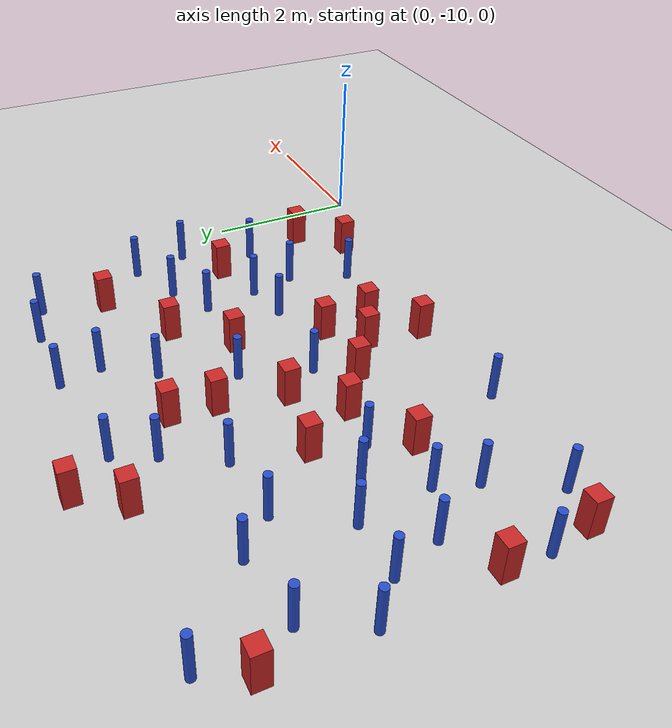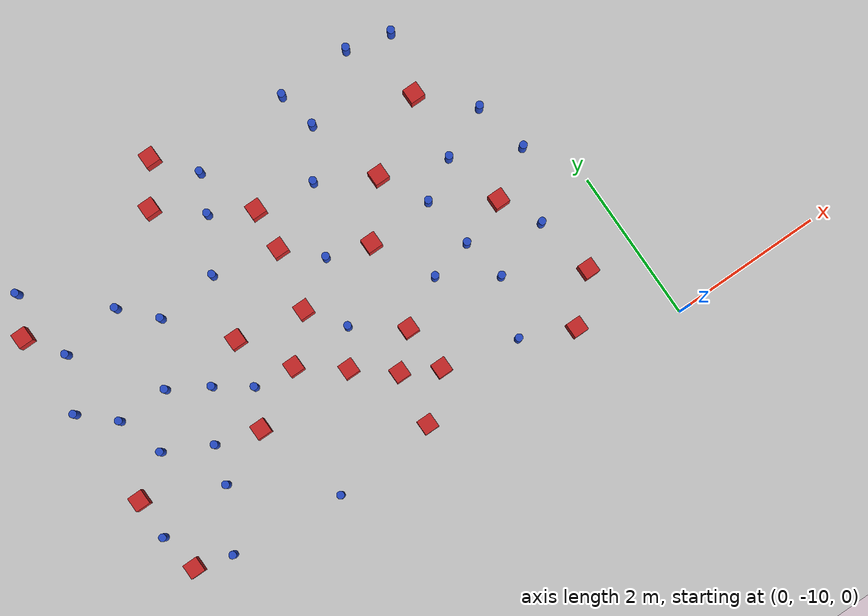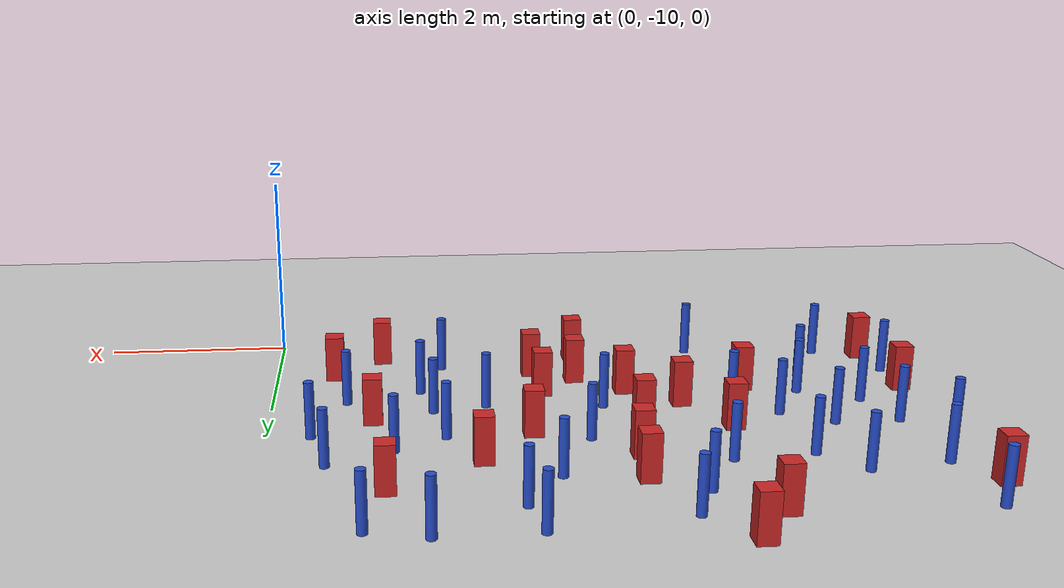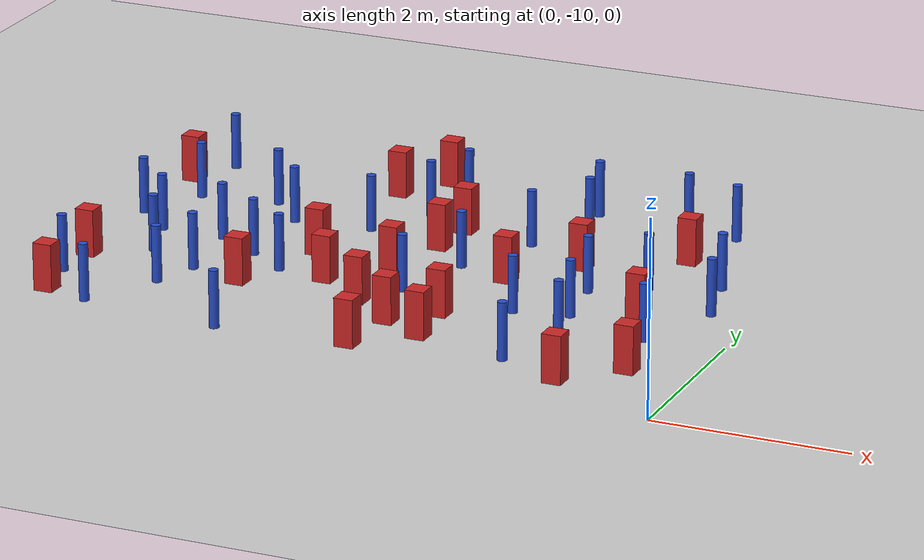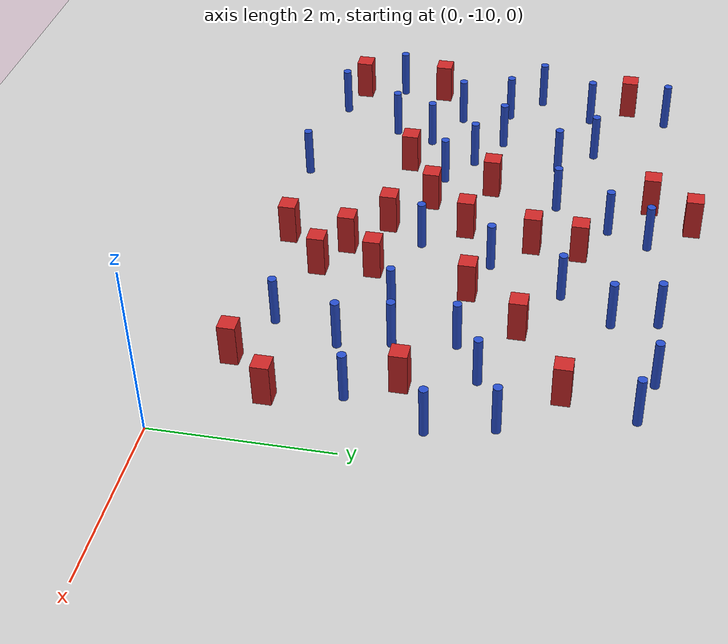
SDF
<sdf version="1.6">
 <world name="default">
  <model name="ground_plane">
   <static>1</static>
   <link name="link">
    <collision name="collision">
     <geometry><plane><normal>0 0 1</normal><size>100 100</size></plane></geometry>
     <surface><friction><ode><mu>100</mu><mu2>50</mu2></ode></friction></surface>
    </collision>
    <visual name="visual">
     <cast_shadows>0</cast_shadows>
     <geometry><plane><normal>0 0 1</normal><size>100 100</size></plane></geometry>
     <material>
      <ambient>1.0 1.0 1.0 1.0</ambient>
      <diffuse>0.8 0.8 0.8 1.0</diffuse>
      <specular>0.01 0.01 0.01 1.000000</specular>
     </material>
    </visual>
   </link>
  </model>
  <model name="pole_obstacle5">
   <static>true</static>
   <pose>-2.82751781046 -6.0906167842 -3.09024884793e-07 -7.19054271912e-07 -2.11315075134e-07 -1.93935509266e-07</pose>
   <link name="link">
    <pose>0 0 0.3 0 -0 0</pose>
    <inertial>
     <mass>1</mass>
     <inertia><ixx>0.145833</ixx><ixy>0</ixy><ixz>0</ixz><iyy>0.145833</iyy><iyz>0</iyz><izz>0.125</izz></inertia>
    </inertial>
    <collision name="collision">
     <geometry><cylinder><radius>0.05</radius><length>.6</length></cylinder></geometry>
    </collision>
    <visual name="visual">
     <geometry><cylinder><radius>0.05</radius><length>.6</length></cylinder></geometry>
     <material>
      <script><name>Gazebo/Blue</name><uri>file://media/materials/scripts/gazebo.material</uri></script>
     </material>
    </visual>
   </link>
  </model>
  <model name="pole_obstacle10">
   <static>true</static>
   <pose>-0.792953530495 -8.11880526269 -3.09024884793e-07 -7.19054271911e-07 -2.11315075158e-07 -1.93935509277e-07</pose>
   <link name="link">
    <pose>0 0 0.3 0 -0 0</pose>
    <inertial>
     <mass>1</mass>
     <inertia><ixx>0.145833</ixx><ixy>0</ixy><ixz>0</ixz><iyy>0.145833</iyy><iyz>0</iyz><izz>0.125</izz></inertia>
    </inertial>
    <collision name="collision">
     <geometry><cylinder><radius>0.05</radius><length>.6</length></cylinder></geometry>
    </collision>
    <visual name="visual">
     <geometry><cylinder><radius>0.05</radius><length>.6</length></cylinder></geometry>
     <material>
      <script><name>Gazebo/Blue</name><uri>file://media/materials/scripts/gazebo.material</uri></script>
     </material>
    </visual>
   </link>
  </model>
  <model name="square_post_obstacle11">
   <static>true</static>
   <pose>-6.83514758745 -8.10717139211 -4.36207812815e-07 3.75137919937e-06 9.77721102514e-07 2.47381364184e-05</pose>
   <link name="link">
    <pose>0 0 0.25 0 -0 0</pose>
    <inertial>
     <mass>100</mass>
     <inertia>
      <ixx>0.166667</ixx>
      <ixy>0</ixy>
      <ixz>0</ixz>
      <iyy>0.166667</iyy>
      <iyz>0</iyz>
      <izz>0.166667</izz>
     </inertia>
    </inertial>
    <collision name="collision"><geometry><box><size>.2 .2 .5</size></box></geometry></collision>
    <visual name="visual">
     <geometry><box><size>.2 .2 .5</size></box></geometry>
     <material>
      <script><name>Gazebo/Red</name><uri>file://media/materials/scripts/gazebo.material</uri></script>
     </material>
    </visual>
   </link>
  </model>
  <model name="pole_obstacle14">
   <static>true</static>
   <pose>-6.27800662612 -7.76188763991 -3.09024884793e-07 -7.19054271911e-07 -2.1131507516e-07 -1.93935509277e-07</pose>
   <link name="link">
    <pose>0 0 0.3 0 -0 0</pose>
    <inertial>
     <mass>1</mass>
     <inertia><ixx>0.145833</ixx><ixy>0</ixy><ixz>0</ixz><iyy>0.145833</iyy><iyz>0</iyz><izz>0.125</izz></inertia>
    </inertial>
    <collision name="collision">
     <geometry><cylinder><radius>0.05</radius><length>.6</length></cylinder></geometry>
    </collision>
    <visual name="visual">
     <geometry><cylinder><radius>0.05</radius><length>.6</length></cylinder></geometry>
     <material>
      <script><name>Gazebo/Blue</name><uri>file://media/materials/scripts/gazebo.material</uri></script>
     </material>
    </visual>
   </link>
  </model>
  <model name="pole_obstacle17">
   <static>true</static>
   <pose>-0.606134589963 -6.50112947915 -3.09024884793e-07 -7.19054271912e-07 -2.11315075129e-07 -1.93935509261e-07</pose>
   <link name="link">
    <pose>0 0 0.3 0 -0 0</pose>
    <inertial>
     <mass>1</mass>
     <inertia><ixx>0.145833</ixx><ixy>0</ixy><ixz>0</ixz><iyy>0.145833</iyy><iyz>0</iyz><izz>0.125</izz></inertia>
    </inertial>
    <collision name="collision">
     <geometry><cylinder><radius>0.05</radius><length>.6</length></cylinder></geometry>
    </collision>
    <visual name="visual">
     <geometry><cylinder><radius>0.05</radius><length>.6</length></cylinder></geometry>
     <material>
      <script><name>Gazebo/Blue</name><uri>file://media/materials/scripts/gazebo.material</uri></script>
     </material>
    </visual>
   </link>
  </model>
  <model name="square_post_obstacle19">
   <static>true</static>
   <pose>-1.17751751848 -9.43307744573 -4.36207812815e-07 3.75137919937e-06 9.77721102514e-07 2.47381364184e-05</pose>
   <link name="link">
    <pose>0 0 0.25 0 -0 0</pose>
    <inertial>
     <mass>100</mass>
     <inertia>
      <ixx>0.166667</ixx>
      <ixy>0</ixy>
      <ixz>0</ixz>
      <iyy>0.166667</iyy>
      <iyz>0</iyz>
      <izz>0.166667</izz>
     </inertia>
    </inertial>
    <collision name="collision"><geometry><box><size>.2 .2 .5</size></box></geometry></collision>
    <visual name="visual">
     <geometry><box><size>.2 .2 .5</size></box></geometry>
     <material>
      <script><name>Gazebo/Red</name><uri>file://media/materials/scripts/gazebo.material</uri></script>
     </material>
    </visual>
   </link>
  </model>
  <model name="pole_obstacle29">
   <static>true</static>
   <pose>-4.50953608733 -6.32848383287 -3.09024884793e-07 -7.19054271911e-07 -2.1131507516e-07 -1.93935509277e-07</pose>
   <link name="link">
    <pose>0 0 0.3 0 -0 0</pose>
    <inertial>
     <mass>1</mass>
     <inertia><ixx>0.145833</ixx><ixy>0</ixy><ixz>0</ixz><iyy>0.145833</iyy><iyz>0</iyz><izz>0.125</izz></inertia>
    </inertial>
    <collision name="collision">
     <geometry><cylinder><radius>0.05</radius><length>.6</length></cylinder></geometry>
    </collision>
    <visual name="visual">
     <geometry><cylinder><radius>0.05</radius><length>.6</length></cylinder></geometry>
     <material>
      <script><name>Gazebo/Blue</name><uri>file://media/materials/scripts/gazebo.material</uri></script>
     </material>
    </visual>
   </link>
  </model>
  <model name="square_post_obstacle24">
   <static>true</static>
   <pose>-3.37426005504 -9.3630403871 -4.36207812815e-07 3.75137919937e-06 9.77721102514e-07 2.47381364184e-05</pose>
   <link name="link">
    <pose>0 0 0.25 0 -0 0</pose>
    <inertial>
     <mass>100</mass>
     <inertia>
      <ixx>0.166667</ixx>
      <ixy>0</ixy>
      <ixz>0</ixz>
      <iyy>0.166667</iyy>
      <iyz>0</iyz>
      <izz>0.166667</izz>
     </inertia>
    </inertial>
    <collision name="collision"><geometry><box><size>.2 .2 .5</size></box></geometry></collision>
    <visual name="visual">
     <geometry><box><size>.2 .2 .5</size></box></geometry>
     <material>
      <script><name>Gazebo/Red</name><uri>file://media/materials/scripts/gazebo.material</uri></script>
     </material>
    </visual>
   </link>
  </model>
  <model name="square_post_obstacle32">
   <static>true</static>
   <pose>-2.1187334367 -6.48678966376 -4.36207812815e-07 3.75137919937e-06 9.77721102514e-07 2.47381364184e-05</pose>
   <link name="link">
    <pose>0 0 0.25 0 -0 0</pose>
    <inertial>
     <mass>100</mass>
     <inertia>
      <ixx>0.166667</ixx>
      <ixy>0</ixy>
      <ixz>0</ixz>
      <iyy>0.166667</iyy>
      <iyz>0</iyz>
      <izz>0.166667</izz>
     </inertia>
    </inertial>
    <collision name="collision"><geometry><box><size>.2 .2 .5</size></box></geometry></collision>
    <visual name="visual">
     <geometry><box><size>.2 .2 .5</size></box></geometry>
     <material>
      <script><name>Gazebo/Red</name><uri>file://media/materials/scripts/gazebo.material</uri></script>
     </material>
    </visual>
   </link>
  </model>
  <model name="square_post_obstacle33">
   <static>true</static>
   <pose>-0.647075574307 -8.92224218763 -4.36207812815e-07 3.75137919937e-06 9.77721102514e-07 2.47381364184e-05</pose>
   <link name="link">
    <pose>0 0 0.25 0 -0 0</pose>
    <inertial>
     <mass>100</mass>
     <inertia>
      <ixx>0.166667</ixx>
      <ixy>0</ixy>
      <ixz>0</ixz>
      <iyy>0.166667</iyy>
      <iyz>0</iyz>
      <izz>0.166667</izz>
     </inertia>
    </inertial>
    <collision name="collision"><geometry><box><size>.2 .2 .5</size></box></geometry></collision>
    <visual name="visual">
     <geometry><box><size>.2 .2 .5</size></box></geometry>
     <material>
      <script><name>Gazebo/Red</name><uri>file://media/materials/scripts/gazebo.material</uri></script>
     </material>
    </visual>
   </link>
  </model>
  <model name="square_post_obstacle37">
   <static>true</static>
   <pose>-4.32250167181 -4.69132706241 -4.36207812815e-07 3.75137919937e-06 9.77721102514e-07 2.47381364184e-05</pose>
   <link name="link">
    <pose>0 0 0.25 0 -0 0</pose>
    <inertial>
     <mass>100</mass>
     <inertia>
      <ixx>0.166667</ixx>
      <ixy>0</ixy>
      <ixz>0</ixz>
      <iyy>0.166667</iyy>
      <iyz>0</iyz>
      <izz>0.166667</izz>
     </inertia>
    </inertial>
    <collision name="collision"><geometry><box><size>.2 .2 .5</size></box></geometry></collision>
    <visual name="visual">
     <geometry><box><size>.2 .2 .5</size></box></geometry>
     <material>
      <script><name>Gazebo/Red</name><uri>file://media/materials/scripts/gazebo.material</uri></script>
     </material>
    </visual>
   </link>
  </model>
  <model name="pole_obstacle55">
   <static>true</static>
   <pose>-0.975287421538 -5.10984791714 -3.09024884793e-07 -7.19054271912e-07 -2.11315075128e-07 -1.93935509261e-07</pose>
   <link name="link">
    <pose>0 0 0.3 0 -0 0</pose>
    <inertial>
     <mass>1</mass>
     <inertia><ixx>0.145833</ixx><ixy>0</ixy><ixz>0</ixz><iyy>0.145833</iyy><iyz>0</iyz><izz>0.125</izz></inertia>
    </inertial>
    <collision name="collision">
     <geometry><cylinder><radius>0.05</radius><length>.6</length></cylinder></geometry>
    </collision>
    <visual name="visual">
     <geometry><cylinder><radius>0.05</radius><length>.6</length></cylinder></geometry>
     <material>
      <script><name>Gazebo/Blue</name><uri>file://media/materials/scripts/gazebo.material</uri></script>
     </material>
    </visual>
   </link>
  </model>
  <model name="pole_obstacle56">
   <static>true</static>
   <pose>-1.6977677058 -7.79831181812 -3.09024884793e-07 -7.19054271912e-07 -2.11315075134e-07 -1.93935509265e-07</pose>
   <link name="link">
    <pose>0 0 0.3 0 -0 0</pose>
    <inertial>
     <mass>1</mass>
     <inertia><ixx>0.145833</ixx><ixy>0</ixy><ixz>0</ixz><iyy>0.145833</iyy><iyz>0</iyz><izz>0.125</izz></inertia>
    </inertial>
    <collision name="collision">
     <geometry><cylinder><radius>0.05</radius><length>.6</length></cylinder></geometry>
    </collision>
    <visual name="visual">
     <geometry><cylinder><radius>0.05</radius><length>.6</length></cylinder></geometry>
     <material>
      <script><name>Gazebo/Blue</name><uri>file://media/materials/scripts/gazebo.material</uri></script>
     </material>
    </visual>
   </link>
  </model>
  <model name="square_post_obstacle45">
   <static>true</static>
   <pose>-4.72688002784 -7.14989084145 -4.36207812815e-07 3.75137919937e-06 9.77721102514e-07 2.47381364184e-05</pose>
   <link name="link">
    <pose>0 0 0.25 0 -0 0</pose>
    <inertial>
     <mass>100</mass>
     <inertia>
      <ixx>0.166667</ixx>
      <ixy>0</ixy>
      <ixz>0</ixz>
      <iyy>0.166667</iyy>
      <iyz>0</iyz>
      <izz>0.166667</izz>
     </inertia>
    </inertial>
    <collision name="collision"><geometry><box><size>.2 .2 .5</size></box></geometry></collision>
    <visual name="visual">
     <geometry><box><size>.2 .2 .5</size></box></geometry>
     <material>
      <script><name>Gazebo/Red</name><uri>file://media/materials/scripts/gazebo.material</uri></script>
     </material>
    </visual>
   </link>
  </model>
  <model name="square_post_obstacle52">
   <static>true</static>
   <pose>-4.32858494296 -7.83222650208 -4.36207812815e-07 3.75137919937e-06 9.77721102514e-07 2.47381364184e-05</pose>
   <link name="link">
    <pose>0 0 0.25 0 -0 0</pose>
    <inertial>
     <mass>100</mass>
     <inertia>
      <ixx>0.166667</ixx>
      <ixy>0</ixy>
      <ixz>0</ixz>
      <iyy>0.166667</iyy>
      <iyz>0</iyz>
      <izz>0.166667</izz>
     </inertia>
    </inertial>
    <collision name="collision"><geometry><box><size>.2 .2 .5</size></box></geometry></collision>
    <visual name="visual">
     <geometry><box><size>.2 .2 .5</size></box></geometry>
     <material>
      <script><name>Gazebo/Red</name><uri>file://media/materials/scripts/gazebo.material</uri></script>
     </material>
    </visual>
   </link>
  </model>
  <model name="pole_obstacle72">
   <static>true</static>
   <pose>-2.4338096299 -5.50018606539 -3.09024884793e-07 -7.19054271912e-07 -2.11315075134e-07 -1.93935509266e-07</pose>
   <link name="link">
    <pose>0 0 0.3 0 -0 0</pose>
    <inertial>
     <mass>1</mass>
     <inertia><ixx>0.145833</ixx><ixy>0</ixy><ixz>0</ixz><iyy>0.145833</iyy><iyz>0</iyz><izz>0.125</izz></inertia>
    </inertial>
    <collision name="collision">
     <geometry><cylinder><radius>0.05</radius><length>.6</length></cylinder></geometry>
    </collision>
    <visual name="visual">
     <geometry><cylinder><radius>0.05</radius><length>.6</length></cylinder></geometry>
     <material>
      <script><name>Gazebo/Blue</name><uri>file://media/materials/scripts/gazebo.material</uri></script>
     </material>
    </visual>
   </link>
  </model>
  <model name="pole_obstacle75">
   <static>true</static>
   <pose>-1.55542042956 -4.9655407303 -3.09024884793e-07 -7.19054271912e-07 -2.11315075134e-07 -1.93935509265e-07</pose>
   <link name="link">
    <pose>0 0 0.3 0 -0 0</pose>
    <inertial>
     <mass>1</mass>
     <inertia><ixx>0.145833</ixx><ixy>0</ixy><ixz>0</ixz><iyy>0.145833</iyy><iyz>0</iyz><izz>0.125</izz></inertia>
    </inertial>
    <collision name="collision">
     <geometry><cylinder><radius>0.05</radius><length>.6</length></cylinder></geometry>
    </collision>
    <visual name="visual">
     <geometry><cylinder><radius>0.05</radius><length>.6</length></cylinder></geometry>
     <material>
      <script><name>Gazebo/Blue</name><uri>file://media/materials/scripts/gazebo.material</uri></script>
     </material>
    </visual>
   </link>
  </model>
  <model name="square_post_obstacle66">
   <static>true</static>
   <pose>-2.83781058213 -8.88945955854 -4.36207812815e-07 3.75137919937e-06 9.77721102514e-07 2.47381364184e-05</pose>
   <link name="link">
    <pose>0 0 0.25 0 -0 0</pose>
    <inertial>
     <mass>100</mass>
     <inertia>
      <ixx>0.166667</ixx>
      <ixy>0</ixy>
      <ixz>0</ixz>
      <iyy>0.166667</iyy>
      <iyz>0</iyz>
      <izz>0.166667</izz>
     </inertia>
    </inertial>
    <collision name="collision"><geometry><box><size>.2 .2 .5</size></box></geometry></collision>
    <visual name="visual">
     <geometry><box><size>.2 .2 .5</size></box></geometry>
     <material>
      <script><name>Gazebo/Red</name><uri>file://media/materials/scripts/gazebo.material</uri></script>
     </material>
    </visual>
   </link>
  </model>
  <model name="pole_obstacle81">
   <static>true</static>
   <pose>-4.8681029752 -7.76317248675 -3.09024884793e-07 -7.19054271911e-07 -2.1131507516e-07 -1.93935509277e-07</pose>
   <link name="link">
    <pose>0 0 0.3 0 -0 0</pose>
    <inertial>
     <mass>1</mass>
     <inertia><ixx>0.145833</ixx><ixy>0</ixy><ixz>0</ixz><iyy>0.145833</iyy><iyz>0</iyz><izz>0.125</izz></inertia>
    </inertial>
    <collision name="collision">
     <geometry><cylinder><radius>0.05</radius><length>.6</length></cylinder></geometry>
    </collision>
    <visual name="visual">
     <geometry><cylinder><radius>0.05</radius><length>.6</length></cylinder></geometry>
     <material>
      <script><name>Gazebo/Blue</name><uri>file://media/materials/scripts/gazebo.material</uri></script>
     </material>
    </visual>
   </link>
  </model>
  <model name="square_post_obstacle70">
   <static>true</static>
   <pose>-2.66824794839 -7.12663362151 -4.36207812815e-07 3.75137919937e-06 9.77721102514e-07 2.47381364184e-05</pose>
   <link name="link">
    <pose>0 0 0.25 0 -0 0</pose>
    <inertial>
     <mass>100</mass>
     <inertia>
      <ixx>0.166667</ixx>
      <ixy>0</ixy>
      <ixz>0</ixz>
      <iyy>0.166667</iyy>
      <iyz>0</iyz>
      <izz>0.166667</izz>
     </inertia>
    </inertial>
    <collision name="collision"><geometry><box><size>.2 .2 .5</size></box></geometry></collision>
    <visual name="visual">
     <geometry><box><size>.2 .2 .5</size></box></geometry>
     <material>
      <script><name>Gazebo/Red</name><uri>file://media/materials/scripts/gazebo.material</uri></script>
     </material>
    </visual>
   </link>
  </model>
  <model name="pole_obstacle84">
   <static>true</static>
   <pose>-6.84579580632 -8.64989039638 -3.09024884793e-07 -7.19054271912e-07 -2.1131507513e-07 -1.93935509261e-07</pose>
   <link name="link">
    <pose>0 0 0.3 0 -0 0</pose>
    <inertial>
     <mass>1</mass>
     <inertia><ixx>0.145833</ixx><ixy>0</ixy><ixz>0</ixz><iyy>0.145833</iyy><iyz>0</iyz><izz>0.125</izz></inertia>
    </inertial>
    <collision name="collision">
     <geometry><cylinder><radius>0.05</radius><length>.6</length></cylinder></geometry>
    </collision>
    <visual name="visual">
     <geometry><cylinder><radius>0.05</radius><length>.6</length></cylinder></geometry>
     <material>
      <script><name>Gazebo/Blue</name><uri>file://media/materials/scripts/gazebo.material</uri></script>
     </material>
    </visual>
   </link>
  </model>
  <model name="pole_obstacle87">
   <static>true</static>
   <pose>-1.84832515544 -9.13395312685 -3.09024884793e-07 -7.19054271912e-07 -2.1131507515e-07 -1.93935509273e-07</pose>
   <link name="link">
    <pose>0 0 0.3 0 -0 0</pose>
    <inertial>
     <mass>1</mass>
     <inertia><ixx>0.145833</ixx><ixy>0</ixy><ixz>0</ixz><iyy>0.145833</iyy><iyz>0</iyz><izz>0.125</izz></inertia>
    </inertial>
    <collision name="collision">
     <geometry><cylinder><radius>0.05</radius><length>.6</length></cylinder></geometry>
    </collision>
    <visual name="visual">
     <geometry><cylinder><radius>0.05</radius><length>.6</length></cylinder></geometry>
     <material>
      <script><name>Gazebo/Blue</name><uri>file://media/materials/scripts/gazebo.material</uri></script>
     </material>
    </visual>
   </link>
  </model>
  <model name="pole_obstacle97">
   <static>true</static>
   <pose>-4.75428403514 -9.46893027762 -3.09024884793e-07 -7.19054271912e-07 -2.1131507513e-07 -1.93935509261e-07</pose>
   <link name="link">
    <pose>0 0 0.3 0 -0 0</pose>
    <inertial>
     <mass>1</mass>
     <inertia><ixx>0.145833</ixx><ixy>0</ixy><ixz>0</ixz><iyy>0.145833</iyy><iyz>0</iyz><izz>0.125</izz></inertia>
    </inertial>
    <collision name="collision">
     <geometry><cylinder><radius>0.05</radius><length>.6</length></cylinder></geometry>
    </collision>
    <visual name="visual">
     <geometry><cylinder><radius>0.05</radius><length>.6</length></cylinder></geometry>
     <material>
      <script><name>Gazebo/Blue</name><uri>file://media/materials/scripts/gazebo.material</uri></script>
     </material>
    </visual>
   </link>
  </model>
  <model name="pole_obstacle98">
   <static>true</static>
   <pose>-1.58105376717 -8.37851371846 -3.09024884793e-07 -7.19054271912e-07 -2.1131507515e-07 -1.93935509273e-07</pose>
   <link name="link">
    <pose>0 0 0.3 0 -0 0</pose>
    <inertial>
     <mass>1</mass>
     <inertia><ixx>0.145833</ixx><ixy>0</ixy><ixz>0</ixz><iyy>0.145833</iyy><iyz>0</iyz><izz>0.125</izz></inertia>
    </inertial>
    <collision name="collision">
     <geometry><cylinder><radius>0.05</radius><length>.6</length></cylinder></geometry>
    </collision>
    <visual name="visual">
     <geometry><cylinder><radius>0.05</radius><length>.6</length></cylinder></geometry>
     <material>
      <script><name>Gazebo/Blue</name><uri>file://media/materials/scripts/gazebo.material</uri></script>
     </material>
    </visual>
   </link>
  </model>
  <model name="square_post_obstacle117">
   <static>true</static>
   <pose>-4.68297501225 -5.20559597326 -4.36207812815e-07 3.75137919937e-06 9.77721102514e-07 2.47381364184e-05</pose>
   <link name="link">
    <pose>0 0 0.25 0 -0 0</pose>
    <inertial>
     <mass>100</mass>
     <inertia>
      <ixx>0.166667</ixx>
      <ixy>0</ixy>
      <ixz>0</ixz>
      <iyy>0.166667</iyy>
      <iyz>0</iyz>
      <izz>0.166667</izz>
     </inertia>
    </inertial>
    <collision name="collision"><geometry><box><size>.2 .2 .5</size></box></geometry></collision>
    <visual name="visual">
     <geometry><box><size>.2 .2 .5</size></box></geometry>
     <material>
      <script><name>Gazebo/Red</name><uri>file://media/materials/scripts/gazebo.material</uri></script>
     </material>
    </visual>
   </link>
  </model>
  <model name="square_post_obstacle118">
   <static>true</static>
   <pose>-3.82850492922 -7.32711816034 -4.36207812815e-07 3.75137919937e-06 9.77721102514e-07 2.47381364184e-05</pose>
   <link name="link">
    <pose>0 0 0.25 0 -0 0</pose>
    <inertial>
     <mass>100</mass>
     <inertia>
      <ixx>0.166667</ixx>
      <ixy>0</ixy>
      <ixz>0</ixz>
      <iyy>0.166667</iyy>
      <iyz>0</iyz>
      <izz>0.166667</izz>
     </inertia>
    </inertial>
    <collision name="collision"><geometry><box><size>.2 .2 .5</size></box></geometry></collision>
    <visual name="visual">
     <geometry><box><size>.2 .2 .5</size></box></geometry>
     <material>
      <script><name>Gazebo/Red</name><uri>file://media/materials/scripts/gazebo.material</uri></script>
     </material>
    </visual>
   </link>
  </model>
  <model name="square_post_obstacle119">
   <static>true</static>
   <pose>-6.74704110137 -9.17402610424 -4.36207812815e-07 3.75137919937e-06 9.77721102514e-07 2.47381364184e-05</pose>
   <link name="link">
    <pose>0 0 0.25 0 -0 0</pose>
    <inertial>
     <mass>100</mass>
     <inertia>
      <ixx>0.166667</ixx>
      <ixy>0</ixy>
      <ixz>0</ixz>
      <iyy>0.166667</iyy>
      <iyz>0</iyz>
      <izz>0.166667</izz>
     </inertia>
    </inertial>
    <collision name="collision"><geometry><box><size>.2 .2 .5</size></box></geometry></collision>
    <visual name="visual">
     <geometry><box><size>.2 .2 .5</size></box></geometry>
     <material>
      <script><name>Gazebo/Red</name><uri>file://media/materials/scripts/gazebo.material</uri></script>
     </material>
    </visual>
   </link>
  </model>
  <model name="pole_obstacle123">
   <static>true</static>
   <pose>-5.33880785444 -6.40551684269 -3.09024884793e-07 -7.19054271911e-07 -2.1131507516e-07 -1.93935509277e-07</pose>
   <link name="link">
    <pose>0 0 0.3 0 -0 0</pose>
    <inertial>
     <mass>1</mass>
     <inertia><ixx>0.145833</ixx><ixy>0</ixy><ixz>0</ixz><iyy>0.145833</iyy><iyz>0</iyz><izz>0.125</izz></inertia>
    </inertial>
    <collision name="collision">
     <geometry><cylinder><radius>0.05</radius><length>.6</length></cylinder></geometry>
    </collision>
    <visual name="visual">
     <geometry><cylinder><radius>0.05</radius><length>.6</length></cylinder></geometry>
     <material>
      <script><name>Gazebo/Blue</name><uri>file://media/materials/scripts/gazebo.material</uri></script>
     </material>
    </visual>
   </link>
  </model>
  <model name="pole_obstacle132">
   <static>true</static>
   <pose>-6.47743728663 -7.16070107888 -3.09024884793e-07 -7.19054271911e-07 -2.1131507516e-07 -1.93935509277e-07</pose>
   <link name="link">
    <pose>0 0 0.3 0 -0 0</pose>
    <inertial>
     <mass>1</mass>
     <inertia><ixx>0.145833</ixx><ixy>0</ixy><ixz>0</ixz><iyy>0.145833</iyy><iyz>0</iyz><izz>0.125</izz></inertia>
    </inertial>
    <collision name="collision">
     <geometry><cylinder><radius>0.05</radius><length>.6</length></cylinder></geometry>
    </collision>
    <visual name="visual">
     <geometry><cylinder><radius>0.05</radius><length>.6</length></cylinder></geometry>
     <material>
      <script><name>Gazebo/Blue</name><uri>file://media/materials/scripts/gazebo.material</uri></script>
     </material>
    </visual>
   </link>
  </model>
  <model name="square_post_obstacle130">
   <static>true</static>
   <pose>-1.17962014464 -5.90332344813 -4.36207812815e-07 3.75137919937e-06 9.77721102514e-07 2.47381364184e-05</pose>
   <link name="link">
    <pose>0 0 0.25 0 -0 0</pose>
    <inertial>
     <mass>100</mass>
     <inertia>
      <ixx>0.166667</ixx>
      <ixy>0</ixy>
      <ixz>0</ixz>
      <iyy>0.166667</iyy>
      <iyz>0</iyz>
      <izz>0.166667</izz>
     </inertia>
    </inertial>
    <collision name="collision"><geometry><box><size>.2 .2 .5</size></box></geometry></collision>
    <visual name="visual">
     <geometry><box><size>.2 .2 .5</size></box></geometry>
     <material>
      <script><name>Gazebo/Red</name><uri>file://media/materials/scripts/gazebo.material</uri></script>
     </material>
    </visual>
   </link>
  </model>
  <model name="square_post_obstacle132">
   <static>true</static>
   <pose>-3.65491390338 -6.52105666224 -4.36207812815e-07 3.75137919937e-06 9.77721102514e-07 2.47381364184e-05</pose>
   <link name="link">
    <pose>0 0 0.25 0 -0 0</pose>
    <inertial>
     <mass>100</mass>
     <inertia>
      <ixx>0.166667</ixx>
      <ixy>0</ixy>
      <ixz>0</ixz>
      <iyy>0.166667</iyy>
      <iyz>0</iyz>
      <izz>0.166667</izz>
     </inertia>
    </inertial>
    <collision name="collision"><geometry><box><size>.2 .2 .5</size></box></geometry></collision>
    <visual name="visual">
     <geometry><box><size>.2 .2 .5</size></box></geometry>
     <material>
      <script><name>Gazebo/Red</name><uri>file://media/materials/scripts/gazebo.material</uri></script>
     </material>
    </visual>
   </link>
  </model>
  <model name="pole_obstacle138">
   <static>true</static>
   <pose>-5.72603189152 -5.9828905018 -3.09024884793e-07 -7.19054271911e-07 -2.1131507516e-07 -1.93935509277e-07</pose>
   <link name="link">
    <pose>0 0 0.3 0 -0 0</pose>
    <inertial>
     <mass>1</mass>
     <inertia><ixx>0.145833</ixx><ixy>0</ixy><ixz>0</ixz><iyy>0.145833</iyy><iyz>0</iyz><izz>0.125</izz></inertia>
    </inertial>
    <collision name="collision">
     <geometry><cylinder><radius>0.05</radius><length>.6</length></cylinder></geometry>
    </collision>
    <visual name="visual">
     <geometry><cylinder><radius>0.05</radius><length>.6</length></cylinder></geometry>
     <material>
      <script><name>Gazebo/Blue</name><uri>file://media/materials/scripts/gazebo.material</uri></script>
     </material>
    </visual>
   </link>
  </model>
  <model name="square_post_obstacle136">
   <static>true</static>
   <pose>-3.7862387265 -8.24518399475 -4.36207812815e-07 3.75137919937e-06 9.77721102514e-07 2.47381364184e-05</pose>
   <link name="link">
    <pose>0 0 0.25 0 -0 0</pose>
    <inertial>
     <mass>100</mass>
     <inertia>
      <ixx>0.166667</ixx>
      <ixy>0</ixy>
      <ixz>0</ixz>
      <iyy>0.166667</iyy>
      <iyz>0</iyz>
      <izz>0.166667</izz>
     </inertia>
    </inertial>
    <collision name="collision"><geometry><box><size>.2 .2 .5</size></box></geometry></collision>
    <visual name="visual">
     <geometry><box><size>.2 .2 .5</size></box></geometry>
     <material>
      <script><name>Gazebo/Red</name><uri>file://media/materials/scripts/gazebo.material</uri></script>
     </material>
    </visual>
   </link>
  </model>
  <model name="pole_obstacle141">
   <static>true</static>
   <pose>-3.49459383497 -7.80466330515 -3.09024884793e-07 -7.19054271912e-07 -2.11315075134e-07 -1.93935509266e-07</pose>
   <link name="link">
    <pose>0 0 0.3 0 -0 0</pose>
    <inertial>
     <mass>1</mass>
     <inertia><ixx>0.145833</ixx><ixy>0</ixy><ixz>0</ixz><iyy>0.145833</iyy><iyz>0</iyz><izz>0.125</izz></inertia>
    </inertial>
    <collision name="collision">
     <geometry><cylinder><radius>0.05</radius><length>.6</length></cylinder></geometry>
    </collision>
    <visual name="visual">
     <geometry><cylinder><radius>0.05</radius><length>.6</length></cylinder></geometry>
     <material>
      <script><name>Gazebo/Blue</name><uri>file://media/materials/scripts/gazebo.material</uri></script>
     </material>
    </visual>
   </link>
  </model>
  <model name="pole_obstacle145">
   <static>true</static>
   <pose>-6.63057689953 -5.13769921785 -3.09024884793e-07 -7.19054271911e-07 -2.1131507516e-07 -1.93935509277e-07</pose>
   <link name="link">
    <pose>0 0 0.3 0 -0 0</pose>
    <inertial>
     <mass>1</mass>
     <inertia><ixx>0.145833</ixx><ixy>0</ixy><ixz>0</ixz><iyy>0.145833</iyy><iyz>0</iyz><izz>0.125</izz></inertia>
    </inertial>
    <collision name="collision">
     <geometry><cylinder><radius>0.05</radius><length>.6</length></cylinder></geometry>
    </collision>
    <visual name="visual">
     <geometry><cylinder><radius>0.05</radius><length>.6</length></cylinder></geometry>
     <material>
      <script><name>Gazebo/Blue</name><uri>file://media/materials/scripts/gazebo.material</uri></script>
     </material>
    </visual>
   </link>
  </model>
  <model name="pole_obstacle146">
   <static>true</static>
   <pose>-1.27255137305 -6.79801933021 -3.09024884793e-07 -7.19054271912e-07 -2.11315075134e-07 -1.93935509265e-07</pose>
   <link name="link">
    <pose>0 0 0.3 0 -0 0</pose>
    <inertial>
     <mass>1</mass>
     <inertia><ixx>0.145833</ixx><ixy>0</ixy><ixz>0</ixz><iyy>0.145833</iyy><iyz>0</iyz><izz>0.125</izz></inertia>
    </inertial>
    <collision name="collision">
     <geometry><cylinder><radius>0.05</radius><length>.6</length></cylinder></geometry>
    </collision>
    <visual name="visual">
     <geometry><cylinder><radius>0.05</radius><length>.6</length></cylinder></geometry>
     <material>
      <script><name>Gazebo/Blue</name><uri>file://media/materials/scripts/gazebo.material</uri></script>
     </material>
    </visual>
   </link>
  </model>
  <model name="square_post_obstacle148">
   <static>true</static>
   <pose>-5.10007049241 -8.23595174775 -4.36207812815e-07 3.75137919937e-06 9.77721102514e-07 2.47381364184e-05</pose>
   <link name="link">
    <pose>0 0 0.25 0 -0 0</pose>
    <inertial>
     <mass>100</mass>
     <inertia>
      <ixx>0.166667</ixx>
      <ixy>0</ixy>
      <ixz>0</ixz>
      <iyy>0.166667</iyy>
      <iyz>0</iyz>
      <izz>0.166667</izz>
     </inertia>
    </inertial>
    <collision name="collision"><geometry><box><size>.2 .2 .5</size></box></geometry></collision>
    <visual name="visual">
     <geometry><box><size>.2 .2 .5</size></box></geometry>
     <material>
      <script><name>Gazebo/Red</name><uri>file://media/materials/scripts/gazebo.material</uri></script>
     </material>
    </visual>
   </link>
  </model>
  <model name="square_post_obstacle149">
   <static>true</static>
   <pose>-3.60682126508 -5.96756981172 -4.36207812815e-07 3.75137919937e-06 9.77721102514e-07 2.47381364184e-05</pose>
   <link name="link">
    <pose>0 0 0.25 0 -0 0</pose>
    <inertial>
     <mass>100</mass>
     <inertia>
      <ixx>0.166667</ixx>
      <ixy>0</ixy>
      <ixz>0</ixz>
      <iyy>0.166667</iyy>
      <iyz>0</iyz>
      <izz>0.166667</izz>
     </inertia>
    </inertial>
    <collision name="collision"><geometry><box><size>.2 .2 .5</size></box></geometry></collision>
    <visual name="visual">
     <geometry><box><size>.2 .2 .5</size></box></geometry>
     <material>
      <script><name>Gazebo/Red</name><uri>file://media/materials/scripts/gazebo.material</uri></script>
     </material>
    </visual>
   </link>
  </model>
  <model name="pole_obstacle158">
   <static>true</static>
   <pose>-5.67721342558 -8.0708918587 -3.09024884793e-07 -7.19054271912e-07 -2.1131507513e-07 -1.93935509261e-07</pose>
   <link name="link">
    <pose>0 0 0.3 0 -0 0</pose>
    <inertial>
     <mass>1</mass>
     <inertia><ixx>0.145833</ixx><ixy>0</ixy><ixz>0</ixz><iyy>0.145833</iyy><iyz>0</iyz><izz>0.125</izz></inertia>
    </inertial>
    <collision name="collision">
     <geometry><cylinder><radius>0.05</radius><length>.6</length></cylinder></geometry>
    </collision>
    <visual name="visual">
     <geometry><cylinder><radius>0.05</radius><length>.6</length></cylinder></geometry>
     <material>
      <script><name>Gazebo/Blue</name><uri>file://media/materials/scripts/gazebo.material</uri></script>
     </material>
    </visual>
   </link>
  </model>
  <model name="pole_obstacle165">
   <static>true</static>
   <pose>-6.5538133508 -6.10650171762 -3.09024884793e-07 -7.19054271911e-07 -2.1131507516e-07 -1.93935509277e-07</pose>
   <link name="link">
    <pose>0 0 0.3 0 -0 0</pose>
    <inertial>
     <mass>1</mass>
     <inertia><ixx>0.145833</ixx><ixy>0</ixy><ixz>0</ixz><iyy>0.145833</iyy><iyz>0</iyz><izz>0.125</izz></inertia>
    </inertial>
    <collision name="collision">
     <geometry><cylinder><radius>0.05</radius><length>.6</length></cylinder></geometry>
    </collision>
    <visual name="visual">
     <geometry><cylinder><radius>0.05</radius><length>.6</length></cylinder></geometry>
     <material>
      <script><name>Gazebo/Blue</name><uri>file://media/materials/scripts/gazebo.material</uri></script>
     </material>
    </visual>
   </link>
  </model>
  <model name="square_post_obstacle164">
   <static>true</static>
   <pose>-6.87637104277 -5.63083838795 -4.36207812815e-07 3.75137919937e-06 9.77721102514e-07 2.47381364184e-05</pose>
   <link name="link">
    <pose>0 0 0.25 0 -0 0</pose>
    <inertial>
     <mass>100</mass>
     <inertia>
      <ixx>0.166667</ixx>
      <ixy>0</ixy>
      <ixz>0</ixz>
      <iyy>0.166667</iyy>
      <iyz>0</iyz>
      <izz>0.166667</izz>
     </inertia>
    </inertial>
    <collision name="collision"><geometry><box><size>.2 .2 .5</size></box></geometry></collision>
    <visual name="visual">
     <geometry><box><size>.2 .2 .5</size></box></geometry>
     <material>
      <script><name>Gazebo/Red</name><uri>file://media/materials/scripts/gazebo.material</uri></script>
     </material>
    </visual>
   </link>
  </model>
  <model name="pole_obstacle170">
   <static>true</static>
   <pose>-0.444721880262 -7.21386699757 -3.09024884793e-07 -7.19054271912e-07 -2.1131507513e-07 -1.93935509262e-07</pose>
   <link name="link">
    <pose>0 0 0.3 0 -0 0</pose>
    <inertial>
     <mass>1</mass>
     <inertia><ixx>0.145833</ixx><ixy>0</ixy><ixz>0</ixz><iyy>0.145833</iyy><iyz>0</iyz><izz>0.125</izz></inertia>
    </inertial>
    <collision name="collision">
     <geometry><cylinder><radius>0.05</radius><length>.6</length></cylinder></geometry>
    </collision>
    <visual name="visual">
     <geometry><cylinder><radius>0.05</radius><length>.6</length></cylinder></geometry>
     <material>
      <script><name>Gazebo/Blue</name><uri>file://media/materials/scripts/gazebo.material</uri></script>
     </material>
    </visual>
   </link>
  </model>
  <model name="pole_obstacle177">
   <static>true</static>
   <pose>-3.91170982562 -5.1927544449 -3.09024884848e-07 -7.19054271903e-07 -2.11315075193e-07 -1.93935509285e-07</pose>
   <link name="link">
    <pose>0 0 0.3 0 -0 0</pose>
    <inertial>
     <mass>1</mass>
     <inertia><ixx>0.145833</ixx><ixy>0</ixy><ixz>0</ixz><iyy>0.145833</iyy><iyz>0</iyz><izz>0.125</izz></inertia>
    </inertial>
    <collision name="collision">
     <geometry><cylinder><radius>0.05</radius><length>.6</length></cylinder></geometry>
    </collision>
    <visual name="visual">
     <geometry><cylinder><radius>0.05</radius><length>.6</length></cylinder></geometry>
     <material>
      <script><name>Gazebo/Blue</name><uri>file://media/materials/scripts/gazebo.material</uri></script>
     </material>
    </visual>
   </link>
  </model>
  <model name="pole_obstacle178">
   <static>true</static>
   <pose>-2.53378856652 -4.985600675 -3.09024884793e-07 -7.19054271912e-07 -2.11315075134e-07 -1.93935509266e-07</pose>
   <link name="link">
    <pose>0 0 0.3 0 -0 0</pose>
    <inertial>
     <mass>1</mass>
     <inertia><ixx>0.145833</ixx><ixy>0</ixy><ixz>0</ixz><iyy>0.145833</iyy><iyz>0</iyz><izz>0.125</izz></inertia>
    </inertial>
    <collision name="collision">
     <geometry><cylinder><radius>0.05</radius><length>.6</length></cylinder></geometry>
    </collision>
    <visual name="visual">
     <geometry><cylinder><radius>0.05</radius><length>.6</length></cylinder></geometry>
     <material>
      <script><name>Gazebo/Blue</name><uri>file://media/materials/scripts/gazebo.material</uri></script>
     </material>
    </visual>
   </link>
  </model>
  <model name="square_post_obstacle177">
   <static>true</static>
   <pose>-1.06644213008 -7.57976632278 -4.36207812815e-07 3.75137919937e-06 9.77721102514e-07 2.47381364184e-05</pose>
   <link name="link">
    <pose>0 0 0.25 0 -0 0</pose>
    <inertial>
     <mass>100</mass>
     <inertia>
      <ixx>0.166667</ixx>
      <ixy>0</ixy>
      <ixz>0</ixz>
      <iyy>0.166667</iyy>
      <iyz>0</iyz>
      <izz>0.166667</izz>
     </inertia>
    </inertial>
    <collision name="collision"><geometry><box><size>.2 .2 .5</size></box></geometry></collision>
    <visual name="visual">
     <geometry><box><size>.2 .2 .5</size></box></geometry>
     <material>
      <script><name>Gazebo/Red</name><uri>file://media/materials/scripts/gazebo.material</uri></script>
     </material>
    </visual>
   </link>
  </model>
  <model name="square_post_obstacle181">
   <static>true</static>
   <pose>-3.29605361028 -8.64070801749 -4.36207812815e-07 3.75137919937e-06 9.77721102514e-07 2.47381364184e-05</pose>
   <link name="link">
    <pose>0 0 0.25 0 -0 0</pose>
    <inertial>
     <mass>100</mass>
     <inertia>
      <ixx>0.166667</ixx>
      <ixy>0</ixy>
      <ixz>0</ixz>
      <iyy>0.166667</iyy>
      <iyz>0</iyz>
      <izz>0.166667</izz>
     </inertia>
    </inertial>
    <collision name="collision"><geometry><box><size>.2 .2 .5</size></box></geometry></collision>
    <visual name="visual">
     <geometry><box><size>.2 .2 .5</size></box></geometry>
     <material>
      <script><name>Gazebo/Red</name><uri>file://media/materials/scripts/gazebo.material</uri></script>
     </material>
    </visual>
   </link>
  </model>
  <model name="pole_obstacle183">
   <static>true</static>
   <pose>-3.23103910762 -6.94798553223 -3.09024884793e-07 -7.19054271912e-07 -2.11315075134e-07 -1.93935509266e-07</pose>
   <link name="link">
    <pose>0 0 0.3 0 -0 0</pose>
    <inertial>
     <mass>1</mass>
     <inertia><ixx>0.145833</ixx><ixy>0</ixy><ixz>0</ixz><iyy>0.145833</iyy><iyz>0</iyz><izz>0.125</izz></inertia>
    </inertial>
    <collision name="collision">
     <geometry><cylinder><radius>0.05</radius><length>.6</length></cylinder></geometry>
    </collision>
    <visual name="visual">
     <geometry><cylinder><radius>0.05</radius><length>.6</length></cylinder></geometry>
     <material>
      <script><name>Gazebo/Blue</name><uri>file://media/materials/scripts/gazebo.material</uri></script>
     </material>
    </visual>
   </link>
  </model>
  <model name="pole_obstacle184">
   <static>true</static>
   <pose>-5.84067266619 -8.55531313638 -3.09024884793e-07 -7.19054271912e-07 -2.1131507513e-07 -1.93935509261e-07</pose>
   <link name="link">
    <pose>0 0 0.3 0 -0 0</pose>
    <inertial>
     <mass>1</mass>
     <inertia><ixx>0.145833</ixx><ixy>0</ixy><ixz>0</ixz><iyy>0.145833</iyy><iyz>0</iyz><izz>0.125</izz></inertia>
    </inertial>
    <collision name="collision">
     <geometry><cylinder><radius>0.05</radius><length>.6</length></cylinder></geometry>
    </collision>
    <visual name="visual">
     <geometry><cylinder><radius>0.05</radius><length>.6</length></cylinder></geometry>
     <material>
      <script><name>Gazebo/Blue</name><uri>file://media/materials/scripts/gazebo.material</uri></script>
     </material>
    </visual>
   </link>
  </model>
  <model name="pole_obstacle186">
   <static>true</static>
   <pose>-6.88881052575 -6.77285960857 -3.09024884793e-07 -7.19054271911e-07 -2.1131507516e-07 -1.93935509277e-07</pose>
   <link name="link">
    <pose>0 0 0.3 0 -0 0</pose>
    <inertial>
     <mass>1</mass>
     <inertia><ixx>0.145833</ixx><ixy>0</ixy><ixz>0</ixz><iyy>0.145833</iyy><iyz>0</iyz><izz>0.125</izz></inertia>
    </inertial>
    <collision name="collision">
     <geometry><cylinder><radius>0.05</radius><length>.6</length></cylinder></geometry>
    </collision>
    <visual name="visual">
     <geometry><cylinder><radius>0.05</radius><length>.6</length></cylinder></geometry>
     <material>
      <script><name>Gazebo/Blue</name><uri>file://media/materials/scripts/gazebo.material</uri></script>
     </material>
    </visual>
   </link>
  </model>
  <model name="square_post_obstacle198">
   <static>true</static>
   <pose>-2.89331611746 -8.25332111025 -4.36207812815e-07 3.75137919937e-06 9.77721102514e-07 2.47381364184e-05</pose>
   <link name="link">
    <pose>0 0 0.25 0 -0 0</pose>
    <inertial>
     <mass>100</mass>
     <inertia>
      <ixx>0.166667</ixx>
      <ixy>0</ixy>
      <ixz>0</ixz>
      <iyy>0.166667</iyy>
      <iyz>0</iyz>
      <izz>0.166667</izz>
     </inertia>
    </inertial>
    <collision name="collision"><geometry><box><size>.2 .2 .5</size></box></geometry></collision>
    <visual name="visual">
     <geometry><box><size>.2 .2 .5</size></box></geometry>
     <material>
      <script><name>Gazebo/Red</name><uri>file://media/materials/scripts/gazebo.material</uri></script>
     </material>
    </visual>
   </link>
  </model>
  <model name="pole_obstacle207">
   <static>true</static>
   <pose>-1.795678645 -7.10123516134 -3.09024884793e-07 -7.19054271912e-07 -2.11315075134e-07 -1.93935509265e-07</pose>
   <link name="link">
    <pose>0 0 0.3 0 -0 0</pose>
    <inertial>
     <mass>1</mass>
     <inertia><ixx>0.145833</ixx><ixy>0</ixy><ixz>0</ixz><iyy>0.145833</iyy><iyz>0</iyz><izz>0.125</izz></inertia>
    </inertial>
    <collision name="collision">
     <geometry><cylinder><radius>0.05</radius><length>.6</length></cylinder></geometry>
    </collision>
    <visual name="visual">
     <geometry><cylinder><radius>0.05</radius><length>.6</length></cylinder></geometry>
     <material>
      <script><name>Gazebo/Blue</name><uri>file://media/materials/scripts/gazebo.material</uri></script>
     </material>
    </visual>
   </link>
  </model>
  <model name="pole_obstacle208">
   <static>true</static>
   <pose>-4.13093216807 -5.67178254595 -3.09024884793e-07 -7.19054271911e-07 -2.1131507516e-07 -1.93935509277e-07</pose>
   <link name="link">
    <pose>0 0 0.3 0 -0 0</pose>
    <inertial>
     <mass>1</mass>
     <inertia><ixx>0.145833</ixx><ixy>0</ixy><ixz>0</ixz><iyy>0.145833</iyy><iyz>0</iyz><izz>0.125</izz></inertia>
    </inertial>
    <collision name="collision">
     <geometry><cylinder><radius>0.05</radius><length>.6</length></cylinder></geometry>
    </collision>
    <visual name="visual">
     <geometry><cylinder><radius>0.05</radius><length>.6</length></cylinder></geometry>
     <material>
      <script><name>Gazebo/Blue</name><uri>file://media/materials/scripts/gazebo.material</uri></script>
     </material>
    </visual>
   </link>
  </model>
  <model name="pole_obstacle210">
   <static>true</static>
   <pose>-5.79492074572 -7.15783815699 -3.09024884793e-07 -7.19054271911e-07 -2.1131507516e-07 -1.93935509277e-07</pose>
   <link name="link">
    <pose>0 0 0.3 0 -0 0</pose>
    <inertial>
     <mass>1</mass>
     <inertia><ixx>0.145833</ixx><ixy>0</ixy><ixz>0</ixz><iyy>0.145833</iyy><iyz>0</iyz><izz>0.125</izz></inertia>
    </inertial>
    <collision name="collision">
     <geometry><cylinder><radius>0.05</radius><length>.6</length></cylinder></geometry>
    </collision>
    <visual name="visual">
     <geometry><cylinder><radius>0.05</radius><length>.6</length></cylinder></geometry>
     <material>
      <script><name>Gazebo/Blue</name><uri>file://media/materials/scripts/gazebo.material</uri></script>
     </material>
    </visual>
   </link>
  </model>
  <model name="pole_obstacle213">
   <static>true</static>
   <pose>-6.25988849989 -9.31606899305 -3.09024884793e-07 -7.19054271912e-07 -2.1131507513e-07 -1.93935509261e-07</pose>
   <link name="link">
    <pose>0 0 0.3 0 -0 0</pose>
    <inertial>
     <mass>1</mass>
     <inertia><ixx>0.145833</ixx><ixy>0</ixy><ixz>0</ixz><iyy>0.145833</iyy><iyz>0</iyz><izz>0.125</izz></inertia>
    </inertial>
    <collision name="collision">
     <geometry><cylinder><radius>0.05</radius><length>.6</length></cylinder></geometry>
    </collision>
    <visual name="visual">
     <geometry><cylinder><radius>0.05</radius><length>.6</length></cylinder></geometry>
     <material>
      <script><name>Gazebo/Blue</name><uri>file://media/materials/scripts/gazebo.material</uri></script>
     </material>
    </visual>
   </link>
  </model>
  <model name="pole_obstacle220">
   <static>true</static>
   <pose>-5.30022896014 -7.45706365457 -3.09024884793e-07 -7.19054271911e-07 -2.1131507516e-07 -1.93935509277e-07</pose>
   <link name="link">
    <pose>0 0 0.3 0 -0 0</pose>
    <inertial>
     <mass>1</mass>
     <inertia><ixx>0.145833</ixx><ixy>0</ixy><ixz>0</ixz><iyy>0.145833</iyy><iyz>0</iyz><izz>0.125</izz></inertia>
    </inertial>
    <collision name="collision">
     <geometry><cylinder><radius>0.05</radius><length>.6</length></cylinder></geometry>
    </collision>
    <visual name="visual">
     <geometry><cylinder><radius>0.05</radius><length>.6</length></cylinder></geometry>
     <material>
      <script><name>Gazebo/Blue</name><uri>file://media/materials/scripts/gazebo.material</uri></script>
     </material>
    </visual>
   </link>
  </model>
  <model name="pole_obstacle224">
   <static>true</static>
   <pose>-2.2581755031 -7.91386948165 -3.09024884793e-07 -7.19054271912e-07 -2.11315075134e-07 -1.93935509266e-07</pose>
   <link name="link">
    <pose>0 0 0.3 0 -0 0</pose>
    <inertial>
     <mass>1</mass>
     <inertia><ixx>0.145833</ixx><ixy>0</ixy><ixz>0</ixz><iyy>0.145833</iyy><iyz>0</iyz><izz>0.125</izz></inertia>
    </inertial>
    <collision name="collision">
     <geometry><cylinder><radius>0.05</radius><length>.6</length></cylinder></geometry>
    </collision>
    <visual name="visual">
     <geometry><cylinder><radius>0.05</radius><length>.6</length></cylinder></geometry>
     <material>
      <script><name>Gazebo/Blue</name><uri>file://media/materials/scripts/gazebo.material</uri></script>
     </material>
    </visual>
   </link>
  </model>
 </world>
</sdf>
